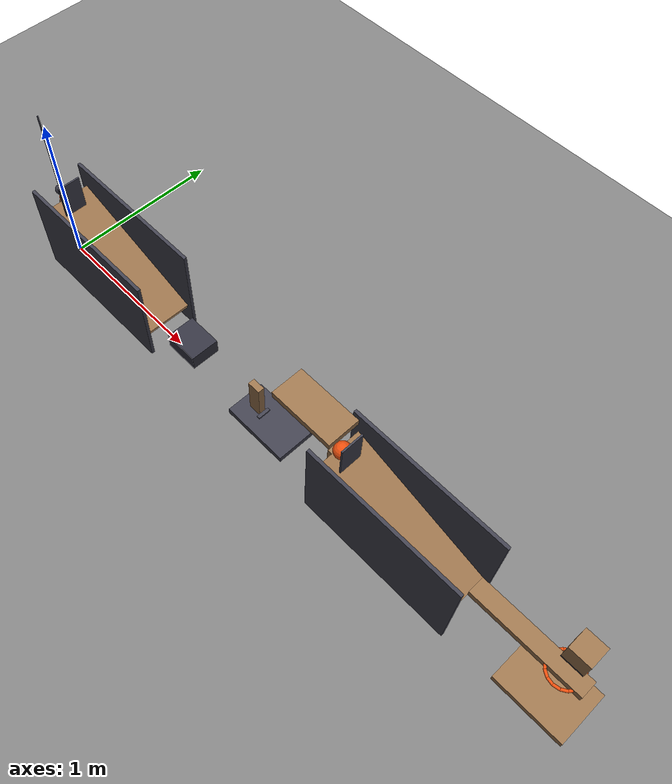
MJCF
<mujoco model="upward_release_gate_relay">
  <compiler angle="radian"/>
  <option timestep="0.002"/>
  <worldbody>
    <geom name="floor" type="plane" size="8 8 0.1" friction="0.68 0.005 0.002"/>
    <body name="ramp1">
      <geom name="ramp1_deck" type="box" pos="0.449122 0 0.285735" size="0.475 0.15 0.02" euler="0 0.331612 0" friction="0.68 0.005 0.002" solref="0.01 1" rgba="0.6 0.45 0.3 1"/>
      <geom name="ramp1_leg" type="box" pos="0 0 0.22019" size="0.03 0.03 0.22019" friction="0.68 0.005 0.002" solref="0.01 1" rgba="0.6 0.45 0.3 1"/>
    </body>
    <body name="ramp1 left guard">
      <geom name="ramp1 left guard" type="box" pos="0.449121 0.16 0.3" size="0.49 0.01 0.3" friction="0.68 0.005 0.002" solref="0.01 1" rgba="0.25 0.25 0.3 1"/>
    </body>
    <body name="ramp1 right guard">
      <geom name="ramp1 right guard" type="box" pos="0.449121 -0.16 0.3" size="0.49 0.01 0.3" friction="0.68 0.005 0.002" solref="0.01 1" rgba="0.25 0.25 0.3 1"/>
    </body>
    <body name="pendulum1" pos="-0.038298 0 1.05006">
      <joint name="pendulum_hinge" type="hinge" pos="0 0 0" axis="0 1 0" limited="true" range="-1.0472 0.959931" damping="0.04"/>
      <geom name="pendulum1" type="sphere" pos="0 0 -0.55" size="0.03" mass="0.39" friction="0.68 0.005 0.002" solref="0.01 1" rgba="0.2 0.2 0.25 1"/>
      <geom name="pendulum rigid arm" type="capsule" size="0.005" fromto="0 0 0 0 0 -0.52" mass="0.01" friction="0.68 0.005 0.002" solref="0.01 1" rgba="0.2 0.2 0.25 1"/>
    </body>
    <body name="ball1" pos="0.0417001 0 0.500054">
      <freejoint/>
      <geom name="ball1" type="sphere" pos="0 0 0" size="0.05" mass="0.2" condim="6" friction="0.68 0.005 0.002" solref="0.01 1" rgba="0.9 0.3 0.05 1"/>
    </body>
    <body name="ball1 release gate" pos="0.0967001 0 0.650054">
      <joint name="ball1_gate_hinge" type="hinge" pos="0 0 0" axis="0 1 0" limited="true" range="-1.5708 0" stiffness="0.02" springref="5.23599" damping="0.04"/>
      <geom name="ball1 release gate" type="box" pos="0 0 -0.11" size="0.005 0.07 0.11" mass="0.015" friction="0.68 0.005 0.002" solref="0.01 1" rgba="0.25 0.25 0.3 1"/>
    </body>
    <body name="cart1" pos="1.13475 0 1000.15">
      <joint name="approximate_cart_slide" type="hinge" pos="0 0 0" axis="0 1 0" limited="true" range="-0.0004 0" damping="200000"/>
      <geom name="cart1" type="box" pos="0 0 -1000" size="0.11 0.09 0.05" mass="0.5" friction="0.68 0.005 0.002" solref="0.01 1" rgba="0.2 0.2 0.25 1"/>
    </body>
    <body name="domino platform">
      <geom name="domino platform" type="box" pos="1.79 0 0.079" size="0.21 0.12 0.02" friction="0.68 0.005 0.002" solref="0.01 1" rgba="0.25 0.25 0.3 1"/>
    </body>
    <body name="domino1" pos="1.68475 0 0.219">
      <freejoint/>
      <geom name="domino1" type="box" pos="0 0 0" size="0.04 0.02 0.12" mass="0.25" friction="0.68 0.005 0.002" solref="0.01 1" rgba="0.6 0.45 0.3 1"/>
    </body>
    <body name="domino toe">
      <geom name="domino toe" type="box" pos="1.73475 0 0.105" size="0.01 0.04 0.006" friction="0.68 0.005 0.002" solref="0.01 1" rgba="0.25 0.25 0.3 1"/>
    </body>
    <body name="flap1" pos="1.92475 0 0.658">
      <joint name="flap_hinge" type="hinge" pos="0 0 0" axis="0 1 0" limited="true" range="0.436332 1.5708" damping="0.04"/>
      <geom name="flap1" type="box" pos="0.2 0 0" size="0.2 0.1 0.02" mass="0.3" friction="0.68 0.005 0.002" solref="0.01 1" rgba="0.6 0.45 0.3 1"/>
    </body>
    <body name="ramp2">
      <geom name="ramp2_deck" type="box" pos="2.73388 0 0.285735" size="0.475 0.15 0.02" euler="0 0.331612 0" friction="0.68 0.005 0.002" solref="0.01 1" rgba="0.6 0.45 0.3 1"/>
      <geom name="ramp2_leg" type="box" pos="2.28475 0 0.22019" size="0.03 0.03 0.22019" friction="0.68 0.005 0.002" solref="0.01 1" rgba="0.6 0.45 0.3 1"/>
    </body>
    <body name="ramp2 left guard">
      <geom name="ramp2 left guard" type="box" pos="2.73388 0.16 0.3" size="0.49 0.01 0.3" friction="0.68 0.005 0.002" solref="0.01 1" rgba="0.25 0.25 0.3 1"/>
    </body>
    <body name="ramp2 right guard">
      <geom name="ramp2 right guard" type="box" pos="2.73388 -0.16 0.3" size="0.49 0.01 0.3" friction="0.68 0.005 0.002" solref="0.01 1" rgba="0.25 0.25 0.3 1"/>
    </body>
    <body name="ball2" pos="2.32645 0 0.500054">
      <freejoint/>
      <geom name="ball2" type="sphere" pos="0 0 0" size="0.05" mass="0.2" condim="6" friction="0.68 0.005 0.002" solref="0.01 1" rgba="0.9 0.3 0.05 1"/>
    </body>
    <body name="ball2 release gate" pos="2.38145 0 0.650054">
      <joint name="ball2_gate_hinge" type="hinge" pos="0 0 0" axis="0 1 0" limited="true" range="-1.5708 0" stiffness="0.02" springref="5.23599" damping="0.04"/>
      <geom name="ball2 release gate" type="box" pos="0 0 -0.11" size="0.005 0.07 0.11" mass="0.015" friction="0.68 0.005 0.002" solref="0.01 1" rgba="0.25 0.25 0.3 1"/>
    </body>
    <body name="seesaw1" pos="3.53346 0 0.38">
      <joint name="seesaw_hinge" type="hinge" pos="0 0 0" axis="0 1 0" limited="true" range="-1.48353 -0.785398" damping="0.04"/>
      <geom name="seesaw1" type="box" pos="0 0 0" size="0.325 0.05 0.02" mass="0.55" friction="0.68 0.005 0.002" solref="0.01 1" rgba="0.6 0.45 0.3 1"/>
    </body>
    <body name="block left ledge">
      <geom name="block left ledge" type="box" pos="3.73346 0.057 0.618952" size="0.06 0.003 0.005" friction="0.68 0.005 0.002" solref="0.01 1" rgba="0.25 0.25 0.3 1"/>
    </body>
    <body name="block right ledge">
      <geom name="block right ledge" type="box" pos="3.73346 -0.057 0.618952" size="0.06 0.003 0.005" friction="0.68 0.005 0.002" solref="0.01 1" rgba="0.25 0.25 0.3 1"/>
    </body>
    <body name="block1" pos="3.73346 0 0.683952">
      <freejoint/>
      <geom name="block1" type="box" pos="0 0 0" size="0.06 0.06 0.06" mass="0.35" friction="0.68 0.005 0.002" solref="0.01 1" rgba="0.6 0.45 0.3 1"/>
    </body>
    <body name="ring1">
      <geom name="ring1_00" type="capsule" size="0.008" fromto="3.82546 0 0.383952 3.81846 0.0352069 0.383952" friction="0.68 0.005 0.002" solref="0.01 1" rgba="0.9 0.3 0.05 1"/>
      <geom name="ring1_01" type="capsule" size="0.008" fromto="3.81846 0.0352069 0.383952 3.79851 0.0650538 0.383952" friction="0.68 0.005 0.002" solref="0.01 1" rgba="0.9 0.3 0.05 1"/>
      <geom name="ring1_02" type="capsule" size="0.008" fromto="3.79851 0.0650538 0.383952 3.76867 0.0849969 0.383952" friction="0.68 0.005 0.002" solref="0.01 1" rgba="0.9 0.3 0.05 1"/>
      <geom name="ring1_03" type="capsule" size="0.008" fromto="3.76867 0.0849969 0.383952 3.73346 0.092 0.383952" friction="0.68 0.005 0.002" solref="0.01 1" rgba="0.9 0.3 0.05 1"/>
      <geom name="ring1_04" type="capsule" size="0.008" fromto="3.73346 0.092 0.383952 3.69825 0.0849969 0.383952" friction="0.68 0.005 0.002" solref="0.01 1" rgba="0.9 0.3 0.05 1"/>
      <geom name="ring1_05" type="capsule" size="0.008" fromto="3.69825 0.0849969 0.383952 3.66841 0.0650538 0.383952" friction="0.68 0.005 0.002" solref="0.01 1" rgba="0.9 0.3 0.05 1"/>
      <geom name="ring1_06" type="capsule" size="0.008" fromto="3.66841 0.0650538 0.383952 3.64846 0.0352069 0.383952" friction="0.68 0.005 0.002" solref="0.01 1" rgba="0.9 0.3 0.05 1"/>
      <geom name="ring1_07" type="capsule" size="0.008" fromto="3.64846 0.0352069 0.383952 3.64146 1.12668e-17 0.383952" friction="0.68 0.005 0.002" solref="0.01 1" rgba="0.9 0.3 0.05 1"/>
      <geom name="ring1_08" type="capsule" size="0.008" fromto="3.64146 1.12668e-17 0.383952 3.64846 -0.0352069 0.383952" friction="0.68 0.005 0.002" solref="0.01 1" rgba="0.9 0.3 0.05 1"/>
      <geom name="ring1_09" type="capsule" size="0.008" fromto="3.64846 -0.0352069 0.383952 3.66841 -0.0650538 0.383952" friction="0.68 0.005 0.002" solref="0.01 1" rgba="0.9 0.3 0.05 1"/>
      <geom name="ring1_10" type="capsule" size="0.008" fromto="3.66841 -0.0650538 0.383952 3.69825 -0.0849969 0.383952" friction="0.68 0.005 0.002" solref="0.01 1" rgba="0.9 0.3 0.05 1"/>
      <geom name="ring1_11" type="capsule" size="0.008" fromto="3.69825 -0.0849969 0.383952 3.73346 -0.092 0.383952" friction="0.68 0.005 0.002" solref="0.01 1" rgba="0.9 0.3 0.05 1"/>
      <geom name="ring1_12" type="capsule" size="0.008" fromto="3.73346 -0.092 0.383952 3.76867 -0.0849969 0.383952" friction="0.68 0.005 0.002" solref="0.01 1" rgba="0.9 0.3 0.05 1"/>
      <geom name="ring1_13" type="capsule" size="0.008" fromto="3.76867 -0.0849969 0.383952 3.79851 -0.0650538 0.383952" friction="0.68 0.005 0.002" solref="0.01 1" rgba="0.9 0.3 0.05 1"/>
      <geom name="ring1_14" type="capsule" size="0.008" fromto="3.79851 -0.0650538 0.383952 3.81846 -0.0352069 0.383952" friction="0.68 0.005 0.002" solref="0.01 1" rgba="0.9 0.3 0.05 1"/>
      <geom name="ring1_15" type="capsule" size="0.008" fromto="3.81846 -0.0352069 0.383952 3.82546 -2.25335e-17 0.383952" friction="0.68 0.005 0.002" solref="0.01 1" rgba="0.9 0.3 0.05 1"/>
    </body>
    <body name="door1" pos="3.52346 0 0.053952">
      <joint name="door_hinge" type="hinge" pos="0 0 0" axis="0 1 0" limited="true" range="0 0.0698132" stiffness="1" springref="-1.0472" damping="0.04"/>
      <geom name="door1" type="box" pos="0.21 0 0" size="0.21 0.16 0.02" mass="0.45" friction="0.68 0.005 0.002" solref="0.01 1" rgba="0.6 0.45 0.3 1"/>
    </body>
  </worldbody>
  <keyframe>
    <key name="start" qpos="0.959931 0.0417001 0 0.500054 1 0 0 0 0 0 1.68475 0 0.219 1 0 0 0 1.5708 2.32645 0 0.500054 1 0 0 0 0 -0.785398 3.73346 0 0.683952 1 0 0 0 0" qvel="0 0 0 0 0 0 0 0 0 0 0 0 0 0 0 0 0 0 0 0 0 0 0 0 0 0 0 0 0 0 0"/>
  </keyframe>
</mujoco>
